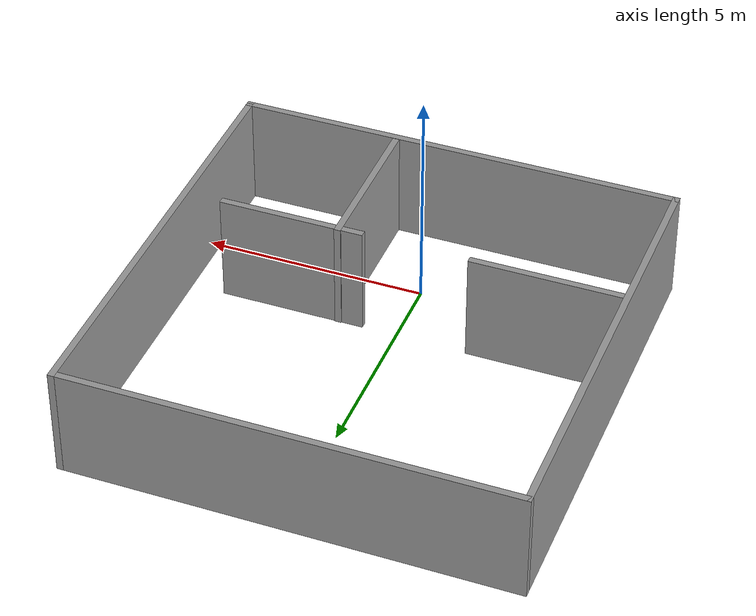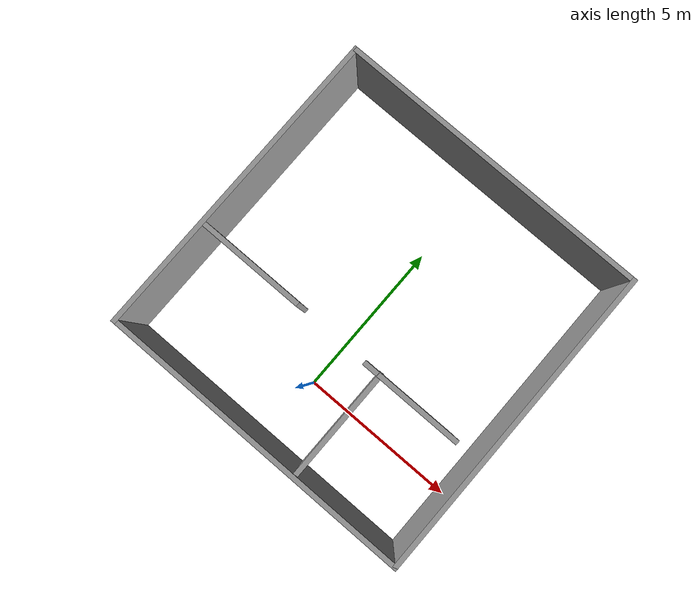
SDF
<?xml version='1.0'?>
<sdf version='1.7'>
  <model name='our_house'>
    <pose>-0.075 2.885 0 0 -0 0</pose>
    <link name='Wall_0'>
      <collision name='Wall_0_Collision'>
        <geometry>
          <box>
            <size>10 0.15 2.5</size>
          </box>
        </geometry>
        <pose>0 0 1.25 0 -0 0</pose>
      </collision>
      <visual name='Wall_0_Visual'>
        <pose>0 0 1.25 0 -0 0</pose>
        <geometry>
          <box>
            <size>10 0.15 2.5</size>
          </box>
        </geometry>
        <material>
          <script>
            <uri>file://media/materials/scripts/gazebo.material</uri>
            <name>Gazebo/Grey</name>
          </script>
          <ambient>1 1 1 1</ambient>
        </material>
        <meta>
          <layer>0</layer>
        </meta>
      </visual>
      <pose>0 -4.925 0 0 -0 0</pose>
    </link>
    <link name='Wall_1'>
      <collision name='Wall_1_Collision'>
        <geometry>
          <box>
            <size>10 0.15 2.5</size>
          </box>
        </geometry>
        <pose>0 0 1.25 0 -0 0</pose>
      </collision>
      <visual name='Wall_1_Visual'>
        <pose>0 0 1.25 0 -0 0</pose>
        <geometry>
          <box>
            <size>10 0.15 2.5</size>
          </box>
        </geometry>
        <material>
          <script>
            <uri>file://media/materials/scripts/gazebo.material</uri>
            <name>Gazebo/Grey</name>
          </script>
          <ambient>1 1 1 1</ambient>
        </material>
        <meta>
          <layer>0</layer>
        </meta>
      </visual>
      <pose>4.925 0 0 0 -0 1.5708</pose>
    </link>
    <link name='Wall_2'>
      <collision name='Wall_2_Collision'>
        <geometry>
          <box>
            <size>10 0.15 2.5</size>
          </box>
        </geometry>
        <pose>0 0 1.25 0 -0 0</pose>
      </collision>
      <visual name='Wall_2_Visual'>
        <pose>0 0 1.25 0 -0 0</pose>
        <geometry>
          <box>
            <size>10 0.15 2.5</size>
          </box>
        </geometry>
        <material>
          <script>
            <uri>file://media/materials/scripts/gazebo.material</uri>
            <name>Gazebo/Grey</name>
          </script>
          <ambient>1 1 1 1</ambient>
        </material>
        <meta>
          <layer>0</layer>
        </meta>
      </visual>
      <pose>0 4.925 0 0 -0 3.14159</pose>
    </link>
    <link name='Wall_3'>
      <collision name='Wall_3_Collision'>
        <geometry>
          <box>
            <size>10 0.15 2.5</size>
          </box>
        </geometry>
        <pose>0 0 1.25 0 -0 0</pose>
      </collision>
      <visual name='Wall_3_Visual'>
        <pose>0 0 1.25 0 -0 0</pose>
        <geometry>
          <box>
            <size>10 0.15 2.5</size>
          </box>
        </geometry>
        <material>
          <script>
            <uri>file://media/materials/scripts/gazebo.material</uri>
            <name>Gazebo/Grey</name>
          </script>
          <ambient>1 1 1 1</ambient>
        </material>
        <meta>
          <layer>0</layer>
        </meta>
      </visual>
      <pose>-4.925 0 0 0 -0 -1.5708</pose>
    </link>
    <link name='Wall_5'>
      <collision name='Wall_5_Collision'>
        <geometry>
          <box>
            <size>3.5 0.15 2.5</size>
          </box>
        </geometry>
        <pose>0 0 1.25 0 -0 0</pose>
      </collision>
      <visual name='Wall_5_Visual'>
        <pose>0 0 1.25 0 -0 0</pose>
        <geometry>
          <box>
            <size>3.5 0.15 2.5</size>
          </box>
        </geometry>
        <material>
          <script>
            <uri>file://media/materials/scripts/gazebo.material</uri>
            <name>Gazebo/Grey</name>
          </script>
          <ambient>1 1 1 1</ambient>
        </material>
        <meta>
          <layer>0</layer>
        </meta>
      </visual>
      <pose>1.41002 -3.0943 0 0 -0 -1.5708</pose>
    </link>
    <link name='Wall_7'>
      <collision name='Wall_7_Collision'>
        <geometry>
          <box>
            <size>3.25 0.15 2.5</size>
          </box>
        </geometry>
        <pose>0 0 1.25 0 -0 0</pose>
      </collision>
      <visual name='Wall_7_Visual'>
        <pose>0 0 1.25 0 -0 0</pose>
        <geometry>
          <box>
            <size>3.25 0.15 2.5</size>
          </box>
        </geometry>
        <material>
          <script>
            <uri>file://media/materials/scripts/gazebo.material</uri>
            <name>Gazebo/Grey</name>
          </script>
          <ambient>1 1 1 1</ambient>
        </material>
        <meta>
          <layer>0</layer>
        </meta>
      </visual>
      <pose>2.47751 -1.43472 0 0 -0 0</pose>
    </link>
    <link name='Wall_9'>
      <collision name='Wall_9_Collision'>
        <geometry>
          <box>
            <size>3.5 0.15 2.5</size>
          </box>
        </geometry>
        <pose>0 0 1.25 0 -0 0</pose>
      </collision>
      <visual name='Wall_9_Visual'>
        <pose>0 0 1.25 0 -0 0</pose>
        <geometry>
          <box>
            <size>3.5 0.15 2.5</size>
          </box>
        </geometry>
        <material>
          <script>
            <uri>file://media/materials/scripts/gazebo.material</uri>
            <name>Gazebo/Grey</name>
          </script>
          <ambient>1 1 1 1</ambient>
        </material>
        <meta>
          <layer>0</layer>
        </meta>
      </visual>
      <pose>-3.24638 -1.41723 0 0 -0 0</pose>
    </link>
    <static>1</static>
  </model>
</sdf>
